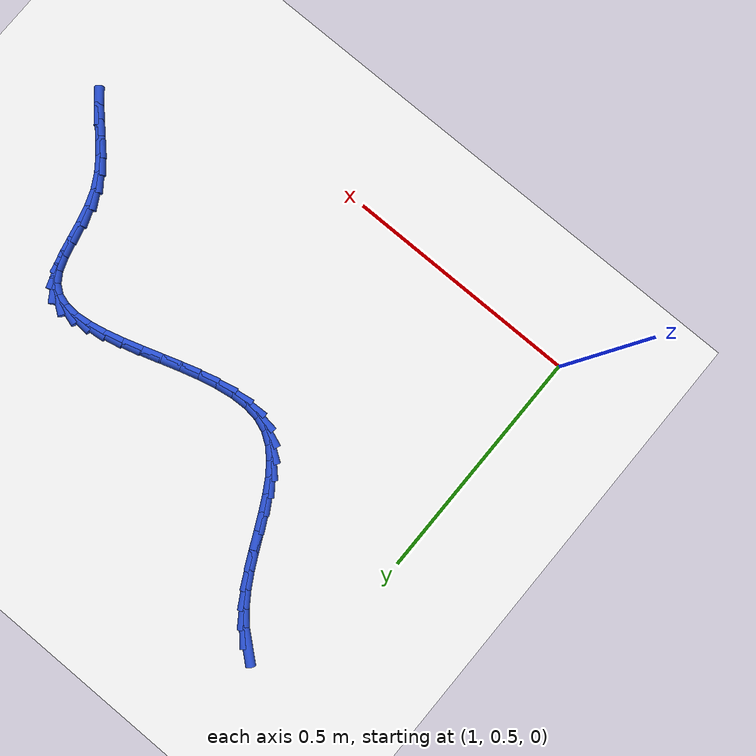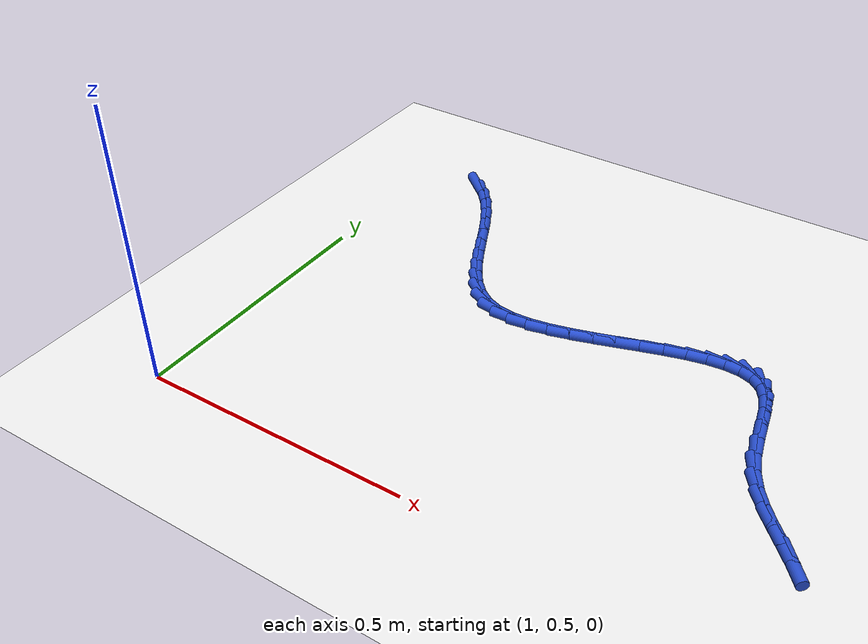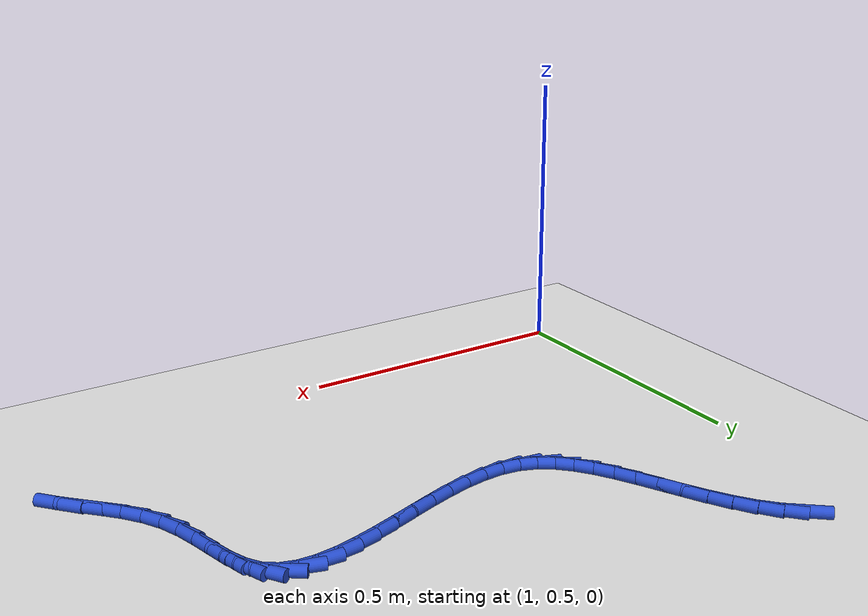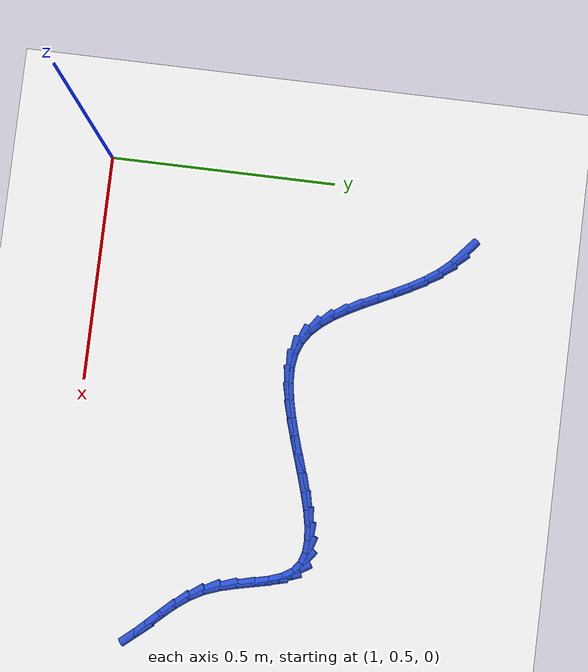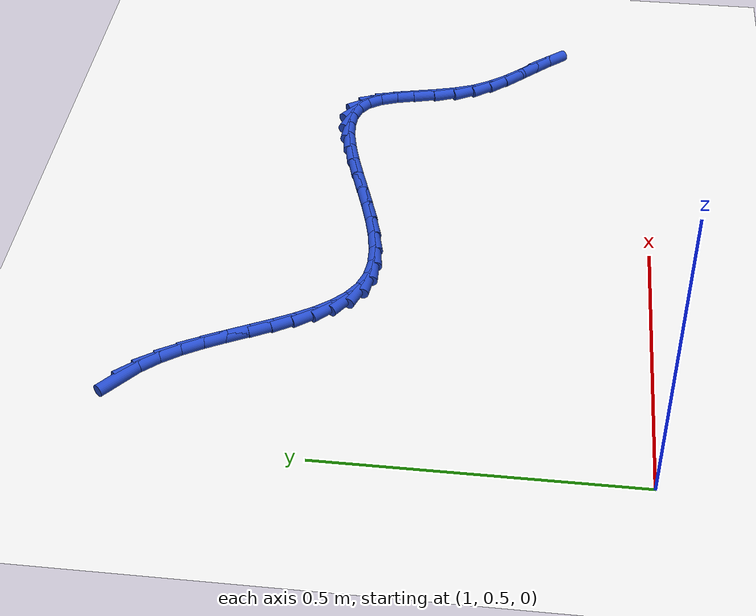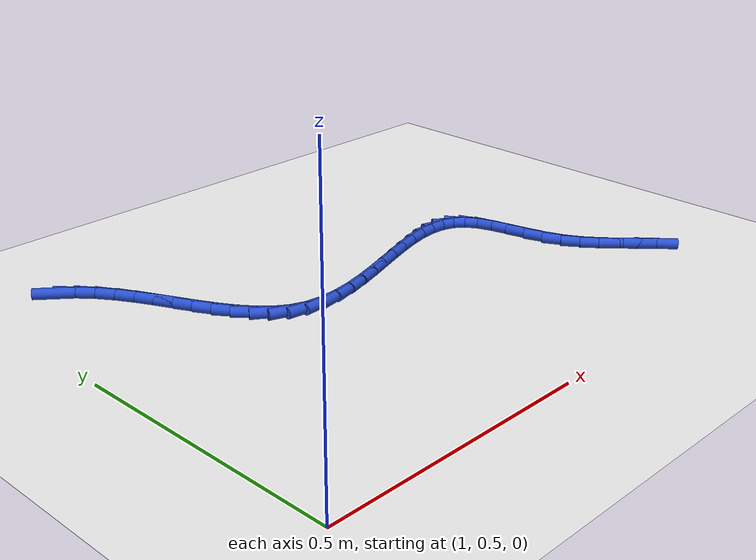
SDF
<sdf version="1.6">
 <world name="default">
  <model name="ground_plane">
   <static>1</static>
   <link name="link">
    <collision name="collision">
     <geometry><plane><normal>0 0 1</normal><size>100 100</size></plane></geometry>
     <surface><friction><ode><mu>100</mu><mu2>50</mu2></ode></friction></surface>
    </collision>
    <visual name="visual">
     <cast_shadows>0</cast_shadows>
     <geometry><plane><normal>0 0 1</normal><size>100 100</size></plane></geometry>
     <material>
      <script><uri>file://media/materials/scripts/gazebo.material</uri><name>Gazebo/WhiteGlow</name></script>
     </material>
    </visual>
   </link>
  </model>
  <model name="line">
   <link name="link_56">
    <pose>1.1237214865011869 1.3012305002882951 0.01 0 1.57 -0.7033818405725583</pose>
    <collision name="collision">
     <geometry><cylinder><radius>0.01</radius><length>0.08</length></cylinder></geometry>
    </collision>
    <visual name="visual">
     <material>
      <script><name>Gazebo/Blue</name><uri>file://media/materials/scripts/gazebo.material</uri></script>
     </material>
     <geometry><cylinder><radius>0.01</radius><length>0.08</length></cylinder></geometry>
    </visual>
   </link>
   <link name="link_57">
    <pose>1.1498809053007506 1.2790450633469599 0.01 0 1.57 -0.8536291593091401</pose>
    <collision name="collision">
     <geometry><cylinder><radius>0.01</radius><length>0.08</length></cylinder></geometry>
    </collision>
    <visual name="visual">
     <material>
      <script><name>Gazebo/Blue</name><uri>file://media/materials/scripts/gazebo.material</uri></script>
     </material>
     <geometry><cylinder><radius>0.01</radius><length>0.08</length></cylinder></geometry>
    </visual>
   </link>
   <link name="link_58">
    <pose>1.1728790646575975 1.2526730937409132 0.01 0 1.57 -0.9669033544255915</pose>
    <collision name="collision">
     <geometry><cylinder><radius>0.01</radius><length>0.08</length></cylinder></geometry>
    </collision>
    <visual name="visual">
     <material>
      <script><name>Gazebo/Blue</name><uri>file://media/materials/scripts/gazebo.material</uri></script>
     </material>
     <geometry><cylinder><radius>0.01</radius><length>0.08</length></cylinder></geometry>
    </visual>
   </link>
   <link name="link_59">
    <pose>1.193313730625599 1.2230519326938054 0.01 0 1.57 -1.0464363392796399</pose>
    <collision name="collision">
     <geometry><cylinder><radius>0.01</radius><length>0.08</length></cylinder></geometry>
    </collision>
    <visual name="visual">
     <material>
      <script><name>Gazebo/Blue</name><uri>file://media/materials/scripts/gazebo.material</uri></script>
     </material>
     <geometry><cylinder><radius>0.01</radius><length>0.08</length></cylinder></geometry>
    </visual>
   </link>
   <link name="link_60">
    <pose>1.2117826821778939 1.191118931351564 0.01 0 1.57 -1.096463690850568</pose>
    <collision name="collision">
     <geometry><cylinder><radius>0.01</radius><length>0.08</length></cylinder></geometry>
    </collision>
    <visual name="visual">
     <material>
      <script><name>Gazebo/Blue</name><uri>file://media/materials/scripts/gazebo.material</uri></script>
     </material>
     <geometry><cylinder><radius>0.01</radius><length>0.08</length></cylinder></geometry>
    </visual>
   </link>
   <link name="link_61">
    <pose>1.2288836982876246 1.1578114408601172 0.01 0 1.57 -1.1200674420037786</pose>
    <collision name="collision">
     <geometry><cylinder><radius>0.01</radius><length>0.08</length></cylinder></geometry>
    </collision>
    <visual name="visual">
     <material>
      <script><name>Gazebo/Blue</name><uri>file://media/materials/scripts/gazebo.material</uri></script>
     </material>
     <geometry><cylinder><radius>0.01</radius><length>0.08</length></cylinder></geometry>
    </visual>
   </link>
   <link name="link_62">
    <pose>1.2452145579279301 1.1240668123653925 0.01 0 1.57 -1.1183700401109224</pose>
    <collision name="collision">
     <geometry><cylinder><radius>0.01</radius><length>0.08</length></cylinder></geometry>
    </collision>
    <visual name="visual">
     <material>
      <script><name>Gazebo/Blue</name><uri>file://media/materials/scripts/gazebo.material</uri></script>
     </material>
     <geometry><cylinder><radius>0.01</radius><length>0.08</length></cylinder></geometry>
    </visual>
   </link>
   <link name="link_63">
    <pose>1.2613730400719512 1.0908223970133168 0.01 0 1.57 -1.0901808059059932</pose>
    <collision name="collision">
     <geometry><cylinder><radius>0.01</radius><length>0.08</length></cylinder></geometry>
    </collision>
    <visual name="visual">
     <material>
      <script><name>Gazebo/Blue</name><uri>file://media/materials/scripts/gazebo.material</uri></script>
     </material>
     <geometry><cylinder><radius>0.01</radius><length>0.08</length></cylinder></geometry>
    </visual>
   </link>
   <link name="link_64">
    <pose>1.277956923692828 1.059015545949819 0.01 0 1.57 -1.0316793830379891</pose>
    <collision name="collision">
     <geometry><cylinder><radius>0.01</radius><length>0.08</length></cylinder></geometry>
    </collision>
    <visual name="visual">
     <material>
      <script><name>Gazebo/Blue</name><uri>file://media/materials/scripts/gazebo.material</uri></script>
     </material>
     <geometry><cylinder><radius>0.01</radius><length>0.08</length></cylinder></geometry>
    </visual>
   </link>
   <link name="link_65">
    <pose>1.2955639877637013 1.0295836103208258 0.01 0 1.57 -0.9362175802798904</pose>
    <collision name="collision">
     <geometry><cylinder><radius>0.01</radius><length>0.08</length></cylinder></geometry>
    </collision>
    <visual name="visual">
     <material>
      <script><name>Gazebo/Blue</name><uri>file://media/materials/scripts/gazebo.material</uri></script>
     </material>
     <geometry><cylinder><radius>0.01</radius><length>0.08</length></cylinder></geometry>
    </visual>
   </link>
   <link name="link_66">
    <pose>1.3147920112577114 1.0034639412722648 0.01 0 1.57 -0.7951697954236493</pose>
    <collision name="collision">
     <geometry><cylinder><radius>0.01</radius><length>0.08</length></cylinder></geometry>
    </collision>
    <visual name="visual">
     <material>
      <script><name>Gazebo/Blue</name><uri>file://media/materials/scripts/gazebo.material</uri></script>
     </material>
     <geometry><cylinder><radius>0.01</radius><length>0.08</length></cylinder></geometry>
    </visual>
   </link>
   <link name="link_67">
    <pose>1.336238773147998 0.9815938899500644 0.01 0 1.57 -0.6023454986765686</pose>
    <collision name="collision">
     <geometry><cylinder><radius>0.01</radius><length>0.08</length></cylinder></geometry>
    </collision>
    <visual name="visual">
     <material>
      <script><name>Gazebo/Blue</name><uri>file://media/materials/scripts/gazebo.material</uri></script>
     </material>
     <geometry><cylinder><radius>0.01</radius><length>0.08</length></cylinder></geometry>
    </visual>
   </link>
   <link name="link_68">
    <pose>1.3605020524077027 0.9649108075001517 0.01 0 1.57 -0.36477550084368865</pose>
    <collision name="collision">
     <geometry><cylinder><radius>0.01</radius><length>0.08</length></cylinder></geometry>
    </collision>
    <visual name="visual">
     <material>
      <script><name>Gazebo/Blue</name><uri>file://media/materials/scripts/gazebo.material</uri></script>
     </material>
     <geometry><cylinder><radius>0.01</radius><length>0.08</length></cylinder></geometry>
    </visual>
   </link>
   <link name="link_69">
    <pose>1.3881743820241197 0.9543437188684959 0.01 0 1.57 -0.1336845446923936</pose>
    <collision name="collision">
     <geometry><cylinder><radius>0.01</radius><length>0.08</length></cylinder></geometry>
    </collision>
    <visual name="visual">
     <material>
      <script><name>Gazebo/Blue</name><uri>file://media/materials/scripts/gazebo.material</uri></script>
     </material>
     <geometry><cylinder><radius>0.01</radius><length>0.08</length></cylinder></geometry>
    </visual>
   </link>
   <link name="link_70">
    <pose>1.4194198385829515 0.9501416216852142 0.01 0 1.57 0.03615019294212959</pose>
    <collision name="collision">
     <geometry><cylinder><radius>0.01</radius><length>0.08</length></cylinder></geometry>
    </collision>
    <visual name="visual">
     <material>
      <script><name>Gazebo/Blue</name><uri>file://media/materials/scripts/gazebo.material</uri></script>
     </material>
     <geometry><cylinder><radius>0.01</radius><length>0.08</length></cylinder></geometry>
    </visual>
   </link>
   <link name="link_71">
    <pose>1.4536631576809438 0.9513800638050266 0.01 0 1.57 0.1528783307305099</pose>
    <collision name="collision">
     <geometry><cylinder><radius>0.01</radius><length>0.08</length></cylinder></geometry>
    </collision>
    <visual name="visual">
     <material>
      <script><name>Gazebo/Blue</name><uri>file://media/materials/scripts/gazebo.material</uri></script>
     </material>
     <geometry><cylinder><radius>0.01</radius><length>0.08</length></cylinder></geometry>
    </visual>
   </link>
   <link name="link_72">
    <pose>1.4902557896676698 0.9570182779342663 0.01 0 1.57 0.23076917075861442</pose>
    <collision name="collision">
     <geometry><cylinder><radius>0.01</radius><length>0.08</length></cylinder></geometry>
    </collision>
    <visual name="visual">
     <material>
      <script><name>Gazebo/Blue</name><uri>file://media/materials/scripts/gazebo.material</uri></script>
     </material>
     <geometry><cylinder><radius>0.01</radius><length>0.08</length></cylinder></geometry>
    </visual>
   </link>
   <link name="link_73">
    <pose>1.5285491848926982 0.9660154967792646 0.01 0 1.57 0.28003418483356507</pose>
    <collision name="collision">
     <geometry><cylinder><radius>0.01</radius><length>0.08</length></cylinder></geometry>
    </collision>
    <visual name="visual">
     <material>
      <script><name>Gazebo/Blue</name><uri>file://media/materials/scripts/gazebo.material</uri></script>
     </material>
     <geometry><cylinder><radius>0.01</radius><length>0.08</length></cylinder></geometry>
    </visual>
   </link>
   <link name="link_74">
    <pose>1.5678947937056007 0.9773309530463542 0.01 0 1.57 0.30680565353445843</pose>
    <collision name="collision">
     <geometry><cylinder><radius>0.01</radius><length>0.08</length></cylinder></geometry>
    </collision>
    <visual name="visual">
     <material>
      <script><name>Gazebo/Blue</name><uri>file://media/materials/scripts/gazebo.material</uri></script>
     </material>
     <geometry><cylinder><radius>0.01</radius><length>0.08</length></cylinder></geometry>
    </visual>
   </link>
   <link name="link_75">
    <pose>1.6076440664559475 0.9899238794418664 0.01 0 1.57 0.31401903666701203</pose>
    <collision name="collision">
     <geometry><cylinder><radius>0.01</radius><length>0.08</length></cylinder></geometry>
    </collision>
    <visual name="visual">
     <material>
      <script><name>Gazebo/Blue</name><uri>file://media/materials/scripts/gazebo.material</uri></script>
     </material>
     <geometry><cylinder><radius>0.01</radius><length>0.08</length></cylinder></geometry>
    </visual>
   </link>
   <link name="link_76">
    <pose>1.6471484534933094 1.0027535086721342 0.01 0 1.57 0.30193234008622016</pose>
    <collision name="collision">
     <geometry><cylinder><radius>0.01</radius><length>0.08</length></cylinder></geometry>
    </collision>
    <visual name="visual">
     <material>
      <script><name>Gazebo/Blue</name><uri>file://media/materials/scripts/gazebo.material</uri></script>
     </material>
     <geometry><cylinder><radius>0.01</radius><length>0.08</length></cylinder></geometry>
    </visual>
   </link>
   <link name="link_77">
    <pose>1.685759405167257 1.0147790734434894 0.01 0 1.57 0.2680343008408779</pose>
    <collision name="collision">
     <geometry><cylinder><radius>0.01</radius><length>0.08</length></cylinder></geometry>
    </collision>
    <visual name="visual">
     <material>
      <script><name>Gazebo/Blue</name><uri>file://media/materials/scripts/gazebo.material</uri></script>
     </material>
     <geometry><cylinder><radius>0.01</radius><length>0.08</length></cylinder></geometry>
    </visual>
   </link>
   <link name="link_78">
    <pose>1.7228283718273603 1.0249598064622636 0.01 0 1.57 0.20618647024842568</pose>
    <collision name="collision">
     <geometry><cylinder><radius>0.01</radius><length>0.08</length></cylinder></geometry>
    </collision>
    <visual name="visual">
     <material>
      <script><name>Gazebo/Blue</name><uri>file://media/materials/scripts/gazebo.material</uri></script>
     </material>
     <geometry><cylinder><radius>0.01</radius><length>0.08</length></cylinder></geometry>
    </visual>
   </link>
   <link name="link_79">
    <pose>1.7577068038231913 1.0322549404347896 0.01 0 1.57 0.10475977856256413</pose>
    <collision name="collision">
     <geometry><cylinder><radius>0.01</radius><length>0.08</length></cylinder></geometry>
    </collision>
    <visual name="visual">
     <material>
      <script><name>Gazebo/Blue</name><uri>file://media/materials/scripts/gazebo.material</uri></script>
     </material>
     <geometry><cylinder><radius>0.01</radius><length>0.08</length></cylinder></geometry>
    </visual>
   </link>
   <link name="link_80">
    <pose>1.7897461515043198 1.0356237080673993 0.01 0 1.57 -0.05592306758463408</pose>
    <collision name="collision">
     <geometry><cylinder><radius>0.01</radius><length>0.08</length></cylinder></geometry>
    </collision>
    <visual name="visual">
     <material>
      <script><name>Gazebo/Blue</name><uri>file://media/materials/scripts/gazebo.material</uri></script>
     </material>
     <geometry><cylinder><radius>0.01</radius><length>0.08</length></cylinder></geometry>
    </visual>
   </link>
   <link name="link_81">
    <pose>1.818297865220316 1.0340253420664243 0.01 0 1.57 -0.302004538723892</pose>
    <collision name="collision">
     <geometry><cylinder><radius>0.01</radius><length>0.08</length></cylinder></geometry>
    </collision>
    <visual name="visual">
     <material>
      <script><name>Gazebo/Blue</name><uri>file://media/materials/scripts/gazebo.material</uri></script>
     </material>
     <geometry><cylinder><radius>0.01</radius><length>0.08</length></cylinder></geometry>
    </visual>
   </link>
   <link name="link_82">
    <pose>1.842713395320751 1.0264190751381976 0.01 0 1.57 -0.6412751807635853</pose>
    <collision name="collision">
     <geometry><cylinder><radius>0.01</radius><length>0.08</length></cylinder></geometry>
    </collision>
    <visual name="visual">
     <material>
      <script><name>Gazebo/Blue</name><uri>file://media/materials/scripts/gazebo.material</uri></script>
     </material>
     <geometry><cylinder><radius>0.01</radius><length>0.08</length></cylinder></geometry>
    </visual>
   </link>
   <link name="link_83">
    <pose>1.862344192155196 1.0117641399890507 0.01 0 1.57 -0.99868710723486</pose>
    <collision name="collision">
     <geometry><cylinder><radius>0.01</radius><length>0.08</length></cylinder></geometry>
    </collision>
    <visual name="visual">
     <material>
      <script><name>Gazebo/Blue</name><uri>file://media/materials/scripts/gazebo.material</uri></script>
     </material>
     <geometry><cylinder><radius>0.01</radius><length>0.08</length></cylinder></geometry>
    </visual>
   </link>
   <link name="link_84">
    <pose>1.8767894883253844 0.9893317570136094 0.01 0 1.57 -1.224341820525851</pose>
    <collision name="collision">
     <geometry><cylinder><radius>0.01</radius><length>0.08</length></cylinder></geometry>
    </collision>
    <visual name="visual">
     <material>
      <script><name>Gazebo/Blue</name><uri>file://media/materials/scripts/gazebo.material</uri></script>
     </material>
     <geometry><cylinder><radius>0.01</radius><length>0.08</length></cylinder></geometry>
    </visual>
   </link>
   <link name="link_85">
    <pose>1.887236827705351 0.9603930217299435 0.01 0 1.57 -1.3281433275295254</pose>
    <collision name="collision">
     <geometry><cylinder><radius>0.01</radius><length>0.08</length></cylinder></geometry>
    </collision>
    <visual name="visual">
     <material>
      <script><name>Gazebo/Blue</name><uri>file://media/materials/scripts/gazebo.material</uri></script>
     </material>
     <geometry><cylinder><radius>0.01</radius><length>0.08</length></cylinder></geometry>
    </visual>
   </link>
   <link name="link_86">
    <pose>1.8955005700261403 0.927008266288316 0.01 0 1.57 -1.3535271350840175</pose>
    <collision name="collision">
     <geometry><cylinder><radius>0.01</radius><length>0.08</length></cylinder></geometry>
    </collision>
    <visual name="visual">
     <material>
      <script><name>Gazebo/Blue</name><uri>file://media/materials/scripts/gazebo.material</uri></script>
     </material>
     <geometry><cylinder><radius>0.01</radius><length>0.08</length></cylinder></geometry>
    </visual>
   </link>
   <link name="link_87">
    <pose>1.9033966058494454 0.8912397503390841 0.01 0 1.57 -1.317445531041926</pose>
    <collision name="collision">
     <geometry><cylinder><radius>0.01</radius><length>0.08</length></cylinder></geometry>
    </collision>
    <visual name="visual">
     <material>
      <script><name>Gazebo/Blue</name><uri>file://media/materials/scripts/gazebo.material</uri></script>
     </material>
     <geometry><cylinder><radius>0.01</radius><length>0.08</length></cylinder></geometry>
    </visual>
   </link>
   <link name="link_88">
    <pose>1.9127408257369591 0.8551497335326048 0.01 0 1.57 -1.2190035781993567</pose>
    <collision name="collision">
     <geometry><cylinder><radius>0.01</radius><length>0.08</length></cylinder></geometry>
    </collision>
    <visual name="visual">
     <material>
      <script><name>Gazebo/Blue</name><uri>file://media/materials/scripts/gazebo.material</uri></script>
     </material>
     <geometry><cylinder><radius>0.01</radius><length>0.08</length></cylinder></geometry>
    </visual>
   </link>
   <link name="link_89">
    <pose>1.9253491157563933 0.8208004714575147 0.01 0 1.57 -1.067097759419892</pose>
    <collision name="collision">
     <geometry><cylinder><radius>0.01</radius><length>0.08</length></cylinder></geometry>
    </collision>
    <visual name="visual">
     <material>
      <script><name>Gazebo/Blue</name><uri>file://media/materials/scripts/gazebo.material</uri></script>
     </material>
     <geometry><cylinder><radius>0.01</radius><length>0.08</length></cylinder></geometry>
    </visual>
   </link>
   <link name="link_90">
    <pose>1.9424674686230883 0.7897391422055148 0.01 0 1.57 -0.9363107723991455</pose>
    <collision name="collision">
     <geometry><cylinder><radius>0.01</radius><length>0.08</length></cylinder></geometry>
    </collision>
    <visual name="visual">
     <material>
      <script><name>Gazebo/Blue</name><uri>file://media/materials/scripts/gazebo.material</uri></script>
     </material>
     <geometry><cylinder><radius>0.01</radius><length>0.08</length></cylinder></geometry>
    </visual>
   </link>
   <link name="link_91">
    <pose>1.9631969770501574 0.761574333569402 0.01 0 1.57 -0.850104293892086</pose>
    <collision name="collision">
     <geometry><cylinder><radius>0.01</radius><length>0.08</length></cylinder></geometry>
    </collision>
    <visual name="visual">
     <material>
      <script><name>Gazebo/Blue</name><uri>file://media/materials/scripts/gazebo.material</uri></script>
     </material>
     <geometry><cylinder><radius>0.01</radius><length>0.08</length></cylinder></geometry>
    </visual>
   </link>
   <link name="link_92">
    <pose>1.9861342102240063 0.7354586379979308 0.01 0 1.57 -0.8094907259249684</pose>
    <collision name="collision">
     <geometry><cylinder><radius>0.01</radius><length>0.08</length></cylinder></geometry>
    </collision>
    <visual name="visual">
     <material>
      <script><name>Gazebo/Blue</name><uri>file://media/materials/scripts/gazebo.material</uri></script>
     </material>
     <geometry><cylinder><radius>0.01</radius><length>0.08</length></cylinder></geometry>
    </visual>
   </link>
   <link name="link_93">
    <pose>2.009875737331039 0.7105446479398567 0.01 0 1.57 -0.8151009555643207</pose>
    <collision name="collision">
     <geometry><cylinder><radius>0.01</radius><length>0.08</length></cylinder></geometry>
    </collision>
    <visual name="visual">
     <material>
      <script><name>Gazebo/Blue</name><uri>file://media/materials/scripts/gazebo.material</uri></script>
     </material>
     <geometry><cylinder><radius>0.01</radius><length>0.08</length></cylinder></geometry>
    </visual>
   </link>
   <link name="link_94">
    <pose>2.0330181275576624 0.6859849558439345 0.01 0 1.57 -0.8699064531221296</pose>
    <collision name="collision">
     <geometry><cylinder><radius>0.01</radius><length>0.08</length></cylinder></geometry>
    </collision>
    <visual name="visual">
     <material>
      <script><name>Gazebo/Blue</name><uri>file://media/materials/scripts/gazebo.material</uri></script>
     </material>
     <geometry><cylinder><radius>0.01</radius><length>0.08</length></cylinder></geometry>
    </visual>
   </link>
  </model>
 </world>
</sdf>
